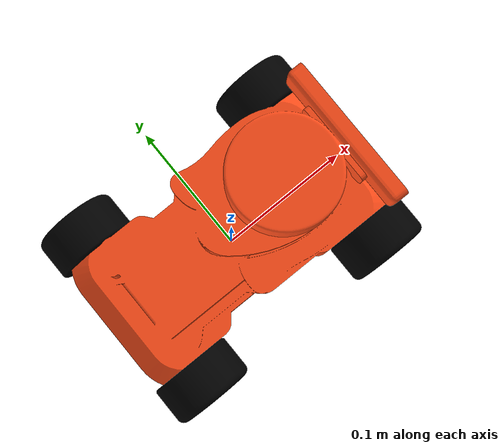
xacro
<?xml version="1.0"?>
<robot xmlns:xacro="http://www.ros.org/wiki/xacro" name="Slambot">

<!-- ___________________________________________Use any one at a time_____________________________________________________________ -->

        <xacro:include filename="ros2_control_slambot.xacro" />
        <xacro:include filename="slambot_mesh_version.xacro"/>
        <xacro:include filename="lidar_mesh.xacro"/>
        <xacro:include filename="t265_tracking_cam_mesh.xacro"/>

</robot>

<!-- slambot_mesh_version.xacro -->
<robot xmlns:xacro="http://www.ros.org/wiki/xacro">

    <xacro:include filename="inertial_macros.xacro"/>

    <xacro:property name="chassis_length"     value="0.210"/>
    <xacro:property name="chassis_width"      value="0.1005"/>
    <xacro:property name="chassis_height"     value="0.055"/>
    <xacro:property name="chassis_mass"       value="1.0"/>
    <xacro:property name="wheel_radius"       value="0.03"/>
    <xacro:property name="wheel_thickness"    value="0.03"/>
    <xacro:property name="wheel_offset_y"     value="0.06525"/>      <!--  (distance between left wheels and right wheels)/2 -->
    <xacro:property name="wheel_offset_x"     value="0.0785"/>      <!--  (distance between front wheels and back wheels)/2  -->
    <xacro:property name="wheel_mass"         value="0.06"/>

    <xacro:property name="collision_chassis_length"             value="0.21"/>
    <xacro:property name="collision_chassis_width"              value="0.1005"/>
    <xacro:property name="collision_chassis_height"             value="0.085"/>
    <xacro:property name="collision_chassis_height_offset"      value="${collision_chassis_height/2}"/>

    <material name="white">
        <color rgba="1 1 1 1" />
    </material>

    <material name="orange">
        <color rgba="1 0.3 0.1 1"/>
    </material>

    <material name="blue">
        <color rgba="0.2 0.2 1 1"/>
    </material>

    <material name="black">
        <color rgba="0 0 0 1"/>
    </material>

    <material name="red">
        <color rgba="1 0 0 1"/>
    </material>

    <material name="green">
        <color rgba="0 1 0 1"/>
    </material>

    <!-- BASE_FOOTPRINT LINK  (shadow of the base_link in 2D plane)-->

    <link name="base_footprint"/>

    <!-- BASE LINK -->

    <link name="base_link"/>

    <!-- BASE JOINT -->

    <joint name="base_joint" type="fixed">
        <parent link="base_link"/>
        <child link="base_footprint"/>
        <origin xyz="0 0 -0.030" rpy="0 0 0"/>
    </joint>

    <!-- CHASSIS LINK -->

    <link name="chassis_link">
        <visual>
            <origin xyz="0 0 -0.015" rpy="0 0 0"/>
            <geometry>
                <mesh filename="package://slambot/meshes/slambot_body.stl" scale="1.0 1.0 1.0"/>
            </geometry>
            <material name="orange"/>
        </visual>

        <collision>
            <origin xyz="0 0 ${collision_chassis_height_offset}"/>
            <geometry>
                <box size="${collision_chassis_length} ${collision_chassis_width} ${collision_chassis_height}"/>
            </geometry>
        </collision>

        <xacro:inertial_box mass="${chassis_mass}" x="${chassis_length}" y="${chassis_width}" z="${chassis_height}">
            <origin xyz="0 0 0" rpy="0 0 0"/>
        </xacro:inertial_box>
    </link>

    <!-- CHASSIS JOINT -->

    <joint name="chassis_joint" type="fixed">
        <parent link="base_link"/>
        <child link="chassis_link"/>
        <origin xyz="0 0 0" rpy="0 0 0"/>
    </joint>

    <!-- WHEEL LEFT LINK -->

    <link name="left_wheel">
        <visual>
            <origin xyz="0 0 0" rpy="0 0 0"/>
            <geometry>
                <mesh filename="package://slambot/meshes/wheel.stl" scale="1.0 1.0 1.0"/>
            </geometry>
            <material name="black"/>
        </visual>
        <collision>
            <geometry>
                <sphere radius="${wheel_radius}"/>
            </geometry>
        </collision>
        <xacro:inertial_sphere mass="${wheel_mass}" radius="${wheel_radius}">
            <origin xyz="0 0 0" rpy="0 0 0"/>
        </xacro:inertial_sphere>
    </link>

    <!-- LEFT WHEEL JOINT -->

    <joint name="left_wheel_joint" type="continuous">
        <parent link="base_link"/>
        <child link="left_wheel"/>
        <origin xyz="-${wheel_offset_x} ${wheel_offset_y} 0" rpy="0 0 0"/>
        <axis xyz="0 1 0"/>
    </joint>

    <!-- RIGHT WHEEL LINK -->

    <link name="right_wheel">
        <visual>
            <origin xyz="0 0 0" rpy="0 0 ${pi}"/>
            <geometry>
                <mesh filename="package://slambot/meshes/wheel.stl" scale="1.0 1.0 1.0"/>
            </geometry>
            <material name="black"/>
        </visual>
        <collision>
            <geometry>
                <sphere radius="${wheel_radius}"/>
            </geometry>
        </collision>
        <xacro:inertial_sphere mass="${wheel_mass}" radius="${wheel_radius}">
            <origin xyz="0 0 0" rpy="0 0 0"/>
        </xacro:inertial_sphere>
    </link>

    <!-- RIGHT WHEEL JOINT -->

    <joint name="right_wheel_joint" type="continuous">
        <parent link="base_link"/>
        <child link="right_wheel"/>
        <origin xyz="-${wheel_offset_x} -${wheel_offset_y} 0" rpy="0 0 0"/>
        <axis xyz="0 1 0"/>
    </joint>

    <!-- ________________ Fixed Wheels __________________-->

    <!-- FL WHEEL LINK -->

    <link name="fl_wheel">
        <visual>
            <origin xyz="0 0 0" rpy="0 0 0"/>
            <geometry>
                <mesh filename="package://slambot/meshes/wheel.stl" scale="1.0 1.0 1.0"/>
            </geometry>
            <material name="black"/>
        </visual>
        <collision>
            <geometry>
                <sphere radius="${wheel_radius}"/>
            </geometry>
        </collision>
        <xacro:inertial_sphere mass="${wheel_mass}" radius="${wheel_radius}">
            <origin xyz="0 0 0" rpy="0 0 0"/>
        </xacro:inertial_sphere>
    </link>

    <!-- FL WHEEL JOINT -->

    <joint name="fl_wheel_joint" type="fixed">
        <parent link="base_link"/>
        <child link="fl_wheel"/>
        <origin xyz="${wheel_offset_x} ${wheel_offset_y} 0" rpy="0 0 0"/>
    </joint>

    <!-- FR WHEEL LINK -->

    <link name="fr_wheel">
        <visual>
            <origin xyz="0 0 0" rpy="0 0 ${pi}"/>
            <geometry>
                <mesh filename="package://slambot/meshes/wheel.stl" scale="1.0 1.0 1.0"/>
            </geometry>
            <material name="black"/>
        </visual>
        <collision>
            <geometry>
                <sphere radius="${wheel_radius}"/>
            </geometry>
        </collision>
        <xacro:inertial_sphere mass="${wheel_mass}" radius="${wheel_radius}">
            <origin xyz="0 0 0" rpy="0 0 0"/>
        </xacro:inertial_sphere>
    </link>

    <!-- FR WHEEL JOINT -->

    <joint name="fr_wheel_joint" type="fixed">
        <parent link="base_link"/>
        <child link="fr_wheel"/>
        <origin xyz="${wheel_offset_x} -${wheel_offset_y} 0" rpy="0 0 0"/>
    </joint>

</robot>

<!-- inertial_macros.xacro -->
<robot xmlns:xacro="http://www.ros.org/wiki/xacro" >

    <xacro:macro name="inertial_sphere" params="mass radius *origin">
        <inertial>
            <xacro:insert_block name="origin"/>
            <mass value="${mass}" />
            <inertia ixx="${(2/5) * mass * (radius*radius)}" ixy="0.0" ixz="0.0"
                    iyy="${(2/5) * mass * (radius*radius)}" iyz="0.0"
                    izz="${(2/5) * mass * (radius*radius)}" />
        </inertial>
    </xacro:macro>

    <xacro:macro name="inertial_box" params="mass x y z *origin">
        <inertial>
            <xacro:insert_block name="origin"/>
            <mass value="${mass}" />
            <inertia ixx="${(1/12) * mass * (y*y+z*z)}" ixy="0.0" ixz="0.0"
                    iyy="${(1/12) * mass * (x*x+z*z)}" iyz="0.0"
                    izz="${(1/12) * mass * (x*x+y*y)}" />
        </inertial>
    </xacro:macro>

    <xacro:macro name="inertial_cylinder" params="mass length radius *origin">
        <inertial>
            <xacro:insert_block name="origin"/>
            <mass value="${mass}" />
            <inertia ixx="${(1/12) * mass * (3*radius*radius + length*length)}" ixy="0.0" ixz="0.0"
                    iyy="${(1/12) * mass * (3*radius*radius + length*length)}" iyz="0.0"
                    izz="${(1/2) * mass * (radius*radius)}" />
        </inertial>
    </xacro:macro>

</robot>

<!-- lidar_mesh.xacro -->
<robot xmlns:xacro="http://www.ros.org/wiki/xacro">

    <!-- LASER FRAME LINK -->

    <link name="laser_frame">
    </link>

    <!-- LASER FRAME JOINT -->

    <joint name="laser_joint" type="fixed">

        <parent link="base_link"/>
        <child link="laser_frame"/>
        <origin xyz="0.039 0 0.135" rpy="0 0 ${pi}"/>

    </joint>

    <!-- LASER FRAME GAZEBO  -->

    <gazebo reference="laser_frame">
        <material>Gazebo/Black</material>

        <sensor name="laser" type="ray">
            <pose> 0 0 0 0 0 0 </pose>
            <visualize>true</visualize>
            <update_rate>10</update_rate>
            <ray>
                <scan>
                    <horizontal>
                        <samples>360</samples>
                        <min_angle>-3.142</min_angle>
                        <max_angle>3.142</max_angle>
                    </horizontal>
                </scan>
                <range>
                    <min>0.1</min>
                    <max>5</max>
                </range>
            </ray>
            <plugin name="laser_controller" filename="libgazebo_ros_ray_sensor.so">
                <ros>
                    <argument>~/out:=scan</argument>
                </ros>
                <output_type>sensor_msgs/LaserScan</output_type>
                <frame_name>laser_frame</frame_name>
            </plugin>
        </sensor>
    </gazebo>

</robot>

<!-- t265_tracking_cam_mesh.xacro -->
<robot xmlns:xacro="http://www.ros.org/wiki/xacro">

    <!-- camera_pose_frame link -->

    <link name="T265_pose_frame"/>

    <!-- camera_pose_frame joint -->

    <joint name="T265_pose_frame_joint" type="fixed">
        <parent link="T265_pose_frame"/>
        <child link="base_link"/>
        <origin xyz="0 0 0.030" rpy="0 0 0"/>
    </joint>

<!-- Custom (just for visual) -->

<!-- TRACKING CAMERA LINK -->

<!-- TRACKING CAMERA JOINT -->

</robot>
